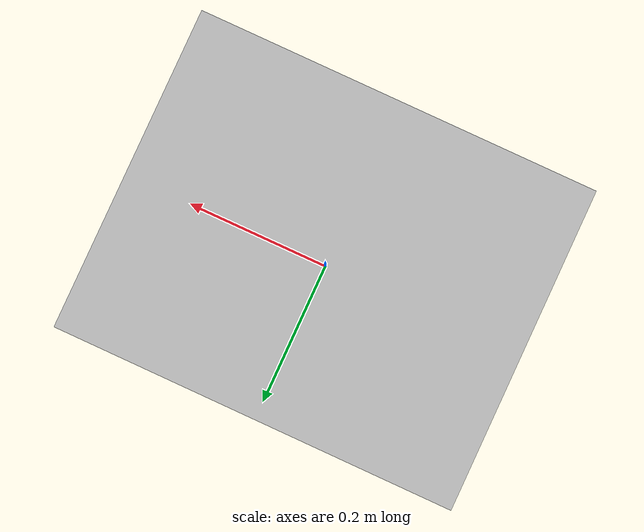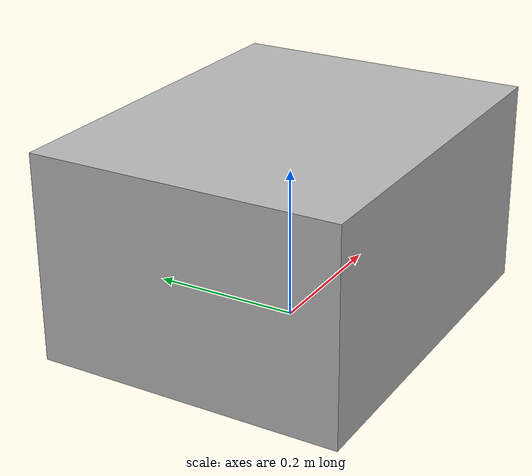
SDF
<?xml version="1.0" ?>
<sdf version="1.4">
  <model name="cardboard_box">
    <pose>0 0 0.135 0 0 0</pose>
    <link name="link">
      <inertial>
        <mass>0.00001</mass>
        <inertia>
          <ixx>0.00000001940</ixx>
          <ixy>0</ixy>
          <ixz>0</ixz>
          <iyy>0.00000002690833</iyy>
          <iyz>0</iyz>
          <izz>0.000000034166</izz>
        </inertia>
      </inertial>
      <collision name="collision">
        <geometry>
          <box>
            <size>0.5 0.4 0.26</size>
          </box>
        </geometry>
      </collision>
      <visual name="visual">
        <pose>0 0 -0.135 0 0 0</pose>
        <geometry>
          <mesh>
            <uri>model://cardboard_box/meshes/cardboard_box.obj</uri>
          </mesh>
        </geometry>
      </visual>
    </link>
  </model>
</sdf>
